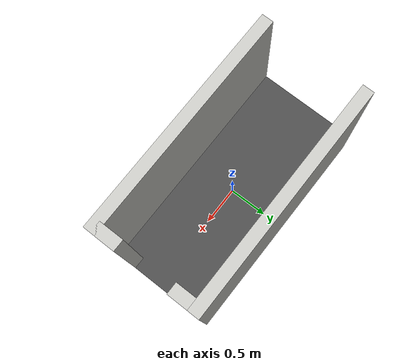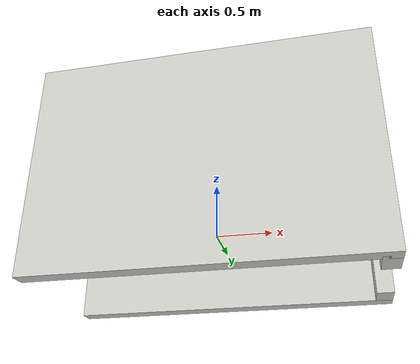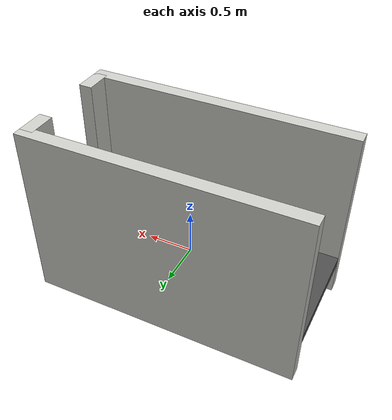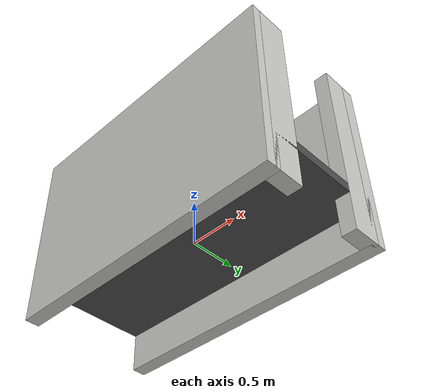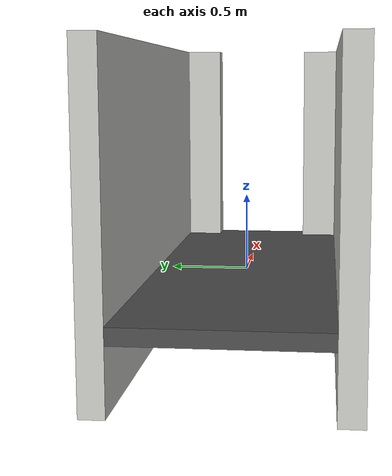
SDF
<?xml version="1.0" ?>
<sdf version="1.5">
  <model name="task4_B">

    <include>
      <name>task4_road</name>
      <pose>0 0 -0.05 0 0 0</pose>
      <uri>model://task4_road</uri>
    </include>

    <include>
      <name>wall_3125_1</name>
      <pose>1.425 0.5 0.5 0 0 0</pose>
      <uri>model://wall_3125</uri>
    </include>
    <include>
      <name>wall_3125_2</name>
      <pose>1.425 -0.5 0.5 0 0 0</pose>
      <uri>model://wall_3125</uri>
    </include>

    <include>
      <name>wall_3_1</name>
      <pose>0 0.675 0.5 0 0 0</pose>
      <uri>model://wall_3</uri>
    </include>
    <include>
      <name>wall_3_2</name>
      <pose>0 -0.675 0.5 0 0 0</pose>
      <uri>model://wall_3</uri>
    </include>

  </model>
</sdf>

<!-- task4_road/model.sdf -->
<sdf version='1.6'>
  <model name='task4_road'>
    <pose frame=''>0 0 -0.1 -0 0</pose>
    <link name='task4'>
      <collision name='task4_Collision'>
        <geometry>
          <box>
            <size>3 1.2 0.1</size>
          </box>
        </geometry>
        <pose frame=''>0 0 0 0 -0 0</pose>
      </collision>
      <visual name='task4_Visual'>
        <pose frame=''>0 0 0 0 -0 0</pose>
        <geometry>
          <box>
            <size>3 1.2 0.1</size>
          </box>
        </geometry>
        <material>
          <script>
            <uri>file://media/materials/scripts/gazebo.material</uri>
            <name>Gazebo/Road</name>
          </script>
          <ambient>1 1 1 1</ambient>
        </material>
        <meta>
          <layer>0</layer>
        </meta>
      </visual>
      <pose frame=''>0 0 0 0 -0 0</pose>
    </link>
    <static>1</static>
  </model>
</sdf>

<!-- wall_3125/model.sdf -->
<sdf version='1.6'>
  <model name='wall_3125'>
    <pose frame=''>0 0 0.5 0 -0 0</pose>
    <link name='Wall_45'>
      <collision name='Wall_45_Collision'>
        <geometry>
          <box>
            <size>0.15 0.3125 2</size>
          </box>
        </geometry>
        <pose frame=''>0 0 0 0 -0 0</pose>
      </collision>
      <visual name='Wall_45_Visual'>
        <pose frame=''>0 0 0 0 -0 0</pose>
        <geometry>
          <box>
            <size>0.15 0.3125 2</size>
          </box>
        </geometry>
        <material>
          <script>
            <uri>file://media/materials/scripts/gazebo.material</uri>
            <name>Gazebo/CeilingTiled</name>
          </script>
          <ambient>1 1 1 1</ambient>
        </material>
        <meta>
          <layer>0</layer>
        </meta>
      </visual>
      <pose frame=''>0 0 0 0 -0 0</pose>
    </link>
    <static>1</static>
  </model>
</sdf>

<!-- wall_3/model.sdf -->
<sdf version='1.6'>
  <model name='wall_3'>
    <pose frame=''>0 0 0.5 0 -0 0</pose>
    <link name='Wall_45'>
      <collision name='Wall_45_Collision'>
        <geometry>
          <box>
            <size>3 0.15 2</size>
          </box>
        </geometry>
        <pose frame=''>0 0 0 0 -0 0</pose>
      </collision>
      <visual name='Wall_45_Visual'>
        <pose frame=''>0 0 0 0 -0 0</pose>
        <geometry>
          <box>
            <size>3 0.15 2</size>
          </box>
        </geometry>
        <material>
          <script>
            <uri>file://media/materials/scripts/gazebo.material</uri>
            <name>Gazebo/CeilingTiled</name>
          </script>
          <ambient>1 1 1 1</ambient>
        </material>
        <meta>
          <layer>0</layer>
        </meta>
      </visual>
      <pose frame=''>0 0 0 0 -0 0</pose>
    </link>
    <static>1</static>
  </model>
</sdf>
